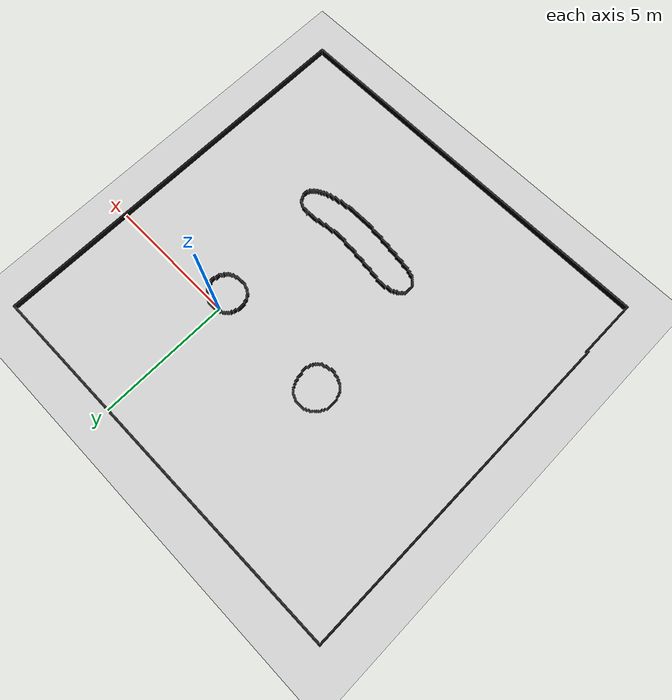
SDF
<?xml version="1.0"?>
<sdf version='1.6'>
  <world name='default'>
    <include>
      <uri>model://ground_plane</uri>
    </include>

    <include>
      <uri>model://sun</uri>
    </include>

    <scene>
      <ambient>0.4 0.4 0.4 1</ambient>
      <background>0.7 0.7 0.7 1</background>
      <shadows>true</shadows>
    </scene>

    <gui fullscreen='0'>
      <camera name='user_camera'>
        <pose>0.8 0.0 12.0 0 1.5708 0</pose>
        <view_controller>orbit</view_controller>
        <projection_type>perspective</projection_type>
      </camera>
    </gui>

    <physics type="ode">
      <real_time_update_rate>1000.0</real_time_update_rate>
      <max_step_size>0.002</max_step_size>
      <real_time_factor>1</real_time_factor>
      <ode>
        <solver>
          <type>quick</type>
          <iters>150</iters>
          <precon_iters>0</precon_iters>
          <sor>1.400000</sor>
          <use_dynamic_moi_rescaling>1</use_dynamic_moi_rescaling>
        </solver>
        <constraints>
          <cfm>0.00001</cfm>
          <erp>0.2</erp>
          <contact_max_correcting_vel>2000.000000</contact_max_correcting_vel>
          <contact_surface_layer>0.01000</contact_surface_layer>
        </constraints>
      </ode>
    </physics>

    <!-- Load model -->
    <include>
      <uri>model://face</uri>
    </include>

  </world>
</sdf>

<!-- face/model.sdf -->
<sdf version="1.4">
  <model name="face">
    <link name="link">
      <inertial>
        <mass>15</mass>
        <inertia>
          <ixx>0.0</ixx>
          <ixy>0.0</ixy>
          <ixz>0.0</ixz>
          <iyy>0.0</iyy>
          <iyz>0.0</iyz>
          <izz>0.0</izz>
        </inertia>
      </inertial>
      <collision name="collision">
        <pose>0 0 0 0 0 0</pose>
        <geometry>
          <mesh>
            <uri>model://face/mesh/map.dae</uri>
          </mesh>
        </geometry>
      </collision>
      <visual name="visual">
        <pose>0 0 0 0 0 0</pose>
        <geometry>
          <mesh>
            <uri>model://face/mesh/map.dae</uri>
          </mesh>
        </geometry>
      </visual>
    </link>
    <static>1</static>
  </model>
</sdf>
